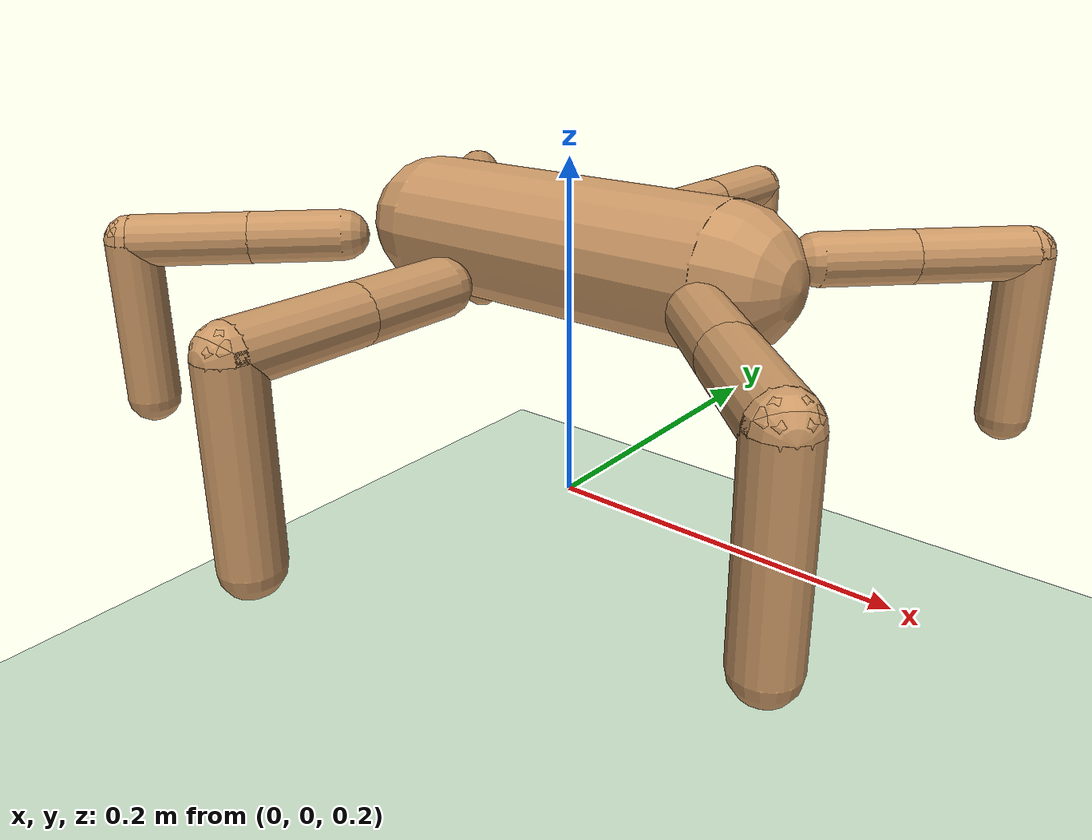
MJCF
<mujoco model="ant">
  <compiler angle="degree" coordinate="local" inertiafromgeom="true"/>
  <option integrator="RK4" timestep="0.002"/>
  <custom>
    <numeric data="0.0 0.0 0.55 1.0 0.0 0.0 0.0 0.0 1.0 0.0 -1.0 0.0 -1.0 0.0 1.0" name="init_qpos"/>
  </custom>
  <default>
    <joint armature="1" damping="1" limited="true"/>
    <geom conaffinity="0" condim="3" density="5.0" friction="1 0.5 0.5" margin="0.01" rgba="0.8 0.6 0.4 1"/>
  </default>
  <asset>
    <texture builtin="gradient" height="100" rgb1="1 1 1" rgb2="0 0 0" type="skybox" width="100"/>
    <texture builtin="flat" height="1278" mark="cross" markrgb="1 1 1" name="texgeom" random="0.01" rgb1="0.8 0.6 0.4" rgb2="0.8 0.6 0.4" type="cube" width="127"/>
    <texture builtin="checker" height="100" name="texplane" rgb1="0 0 0" rgb2="0.8 0.8 0.8" type="2d" width="100"/>
    <material name="MatPlane" reflectance="0.5" shininess="1" specular="1" texrepeat="60 60" texture="texplane"/>
    <material name="geom" texture="texgeom" texuniform="true"/>
  </asset>
  <worldbody>
    <light cutoff="100" diffuse="1 1 1" dir="-0 0 -1.3" directional="true" exponent="1" pos="0 0 1.3" specular=".1 .1 .1"/>
    <geom conaffinity="1" condim="6" material="MatPlane" name="floor" pos="0 0 0" rgba="0.8 0.9 0.8 1" size="40 40 40"  type="plane"/>
    <body name="torso" pos="0 0 0.35">
      <!--몸통-->
      <geom fromto="0.1 0.0 0.0 -0.1 0.0 0.0" name="torso_geom" size="0.04" type="capsule"/>
      <joint armature="0" damping="0" limited="false" margin="0.01" name="root" pos="0 0 0" type="free"/>

      <!--머리-->

      <body name="front_left_leg" pos="0.12 0.06 0">
        <joint axis="0 0 1" name="coxa_fl" pos="0.0 0.0 0.0" range="-34.37 34.37" type="hinge"/>
        <geom fromto="0.0 0.0 0.0 0.03676 0.03676 0.0" name="coxa_fl_geom" size="0.015"  type="capsule"/>
        <body pos="0.03676 0.03676 0">
          <joint axis="-1 1 0" name="femur_fl" pos="0.0 0.0 0.0" range="-57.3 17.18" type="hinge"/>
          <geom fromto="0.0 0.0 0.0 0.0466 0.0466 0.0" name="femur_fl_geom" size="0.015" type="capsule"/>
          <body pos="0.0466 0.0466 0.0">
            <joint axis="-1 1 0" name="tibia_fl" pos="0.0 0.0 0.0" range="-57.3 57.3" type="hinge"/>
            <geom fromto="0.0 0.0 0.0 0.0 0.0 -0.095" name="tibia_fl_geom" size="0.015" type="capsule"/>
          </body>
        </body>
      </body>

      <body name="mid_left_leg" pos="0.0 0.1 0">
        <joint axis="0 0 1" name="coxa_ml" pos="0.0 0.0 0.0" range="-34.37 34.37" type="hinge"/>
        <geom fromto="0.0 0.0 0.0 0.0 0.052 0.0" name="coxa_ml_geom" size="0.015" type="capsule"/>
        <body pos="0.0 0.052 0">
          <joint axis="-1 0 0" name="femur_ml" pos="0.0 0.0 0.0" range="-57.3 17.18" type="hinge"/>
          <geom fromto="0.0 0.0 0.0 0.0 0.066 0.0" name="femur_ml_geom" size="0.015" type="capsule"/>
          <body pos="0.0 0.066 0">
            <joint axis="-1 0 0" name="tibia_ml" pos="0.0 0.0 0.0" range="-57.3 57.3" type="hinge"/>
            <geom fromto="0.0 0.0 0.0 0.0 0.0 -0.095" name="tibia_ml_geom" size="0.015" type="capsule"/>
          </body>
        </body>
      </body>

      <body name="front_right_leg" pos="0.12 -0.06 0">
        <joint axis="0 0 1" name="coxa_fr" pos="0.0 0.0 0.0" range="-34.37 34.37" type="hinge"/>
        <geom fromto="0.0 0.0 0.0 0.03676 -0.03676 0.0" name="coxa_fr_geom" size="0.015" type="capsule"/>
        <body pos="0.03676 -0.03676 0">
          <joint axis="1 1 0" name="femur_fr" pos="0.0 0.0 0.0" range="-57.3 17.18" type="hinge"/>
          <geom fromto="0.0 0.0 0.0 0.0466 -0.0466 0.0" name="femur_fr_geom" size="0.015" type="capsule"/>
          <body pos="0.0466 -0.0466 0">
            <joint axis="1 1 0" name="tibia_fr" pos="0.0 0.0 0.0" range="-57.3 57.3" type="hinge"/>
            <geom fromto="0.0 0.0 0.0 0.0 0.0 -0.095" name="tibia_fr_geom" size="0.015" type="capsule"/>
          </body>
        </body>
      </body>

      <body name="mid_right_leg" pos="0.0 -0.1 0">
        <joint axis="0 0 1" name="coxa_mr" pos="0.0 0.0 0.0" range="-34.37 34.37" type="hinge"/>
        <geom fromto="0.0 0.0 0.0 0.0 -0.052 0.0" name="coxa_mr_geom" size="0.015" type="capsule"/>
        <body pos="0.0 -0.052 0">
          <joint axis="1 0 0" name="femur_mr" pos="0.0 0.0 0.0" range="-57.3 17.18" type="hinge"/>
          <geom fromto="0.0 0.0 0.0 0.0 -0.066 0.0" name="femur_mr_geom" size="0.015" type="capsule"/>
          <body pos="0.0 -0.066 0">
            <joint axis="1 0 0" name="tibia_mr" pos="0.0 0.0 0.0" range="-57.3 57.3" type="hinge"/>
            <geom fromto="0.0 0.0 0.0 0.0 0 -0.095" name="tibia_mr_geom" size="0.015" type="capsule"/>
          </body>
        </body>
      </body>

      <body name="back_right_leg" pos="-0.12 -0.06 0">
        <joint axis="0 0 1" name="coxa_rr" pos="0.0 0.0 0.0" range="-34.37 34.37" type="hinge"/>
        <geom fromto="0.0 0.0 0.0 -0.03676 -0.03676 0.0" name="coxa_rr_geom" size="0.015" type="capsule"/>
        <body pos="-0.03676 -0.03676 0">
          <joint axis="1 -1 0" name="femur_rr" pos="0.0 0.0 0.0" range="-57.3 17.18" type="hinge"/>
          <geom fromto="0.0 0.0 0.0 -0.0466 -0.0466 0.0" name="femur_rr_geom" size="0.015" type="capsule"/>
          <body pos="-0.0466 -0.0466 0">
            <joint axis="1 -1 0" name="tibia_rr" pos="0.0 0.0 0.0" range="-57.3 57.3" type="hinge"/>
            <geom fromto="0.0 0.0 0.0 0.0 0.0 -0.095" name="tibia_rr_geom" size="0.015" type="capsule"/>
          </body>
        </body>
      </body>

      <body name="back_left_leg" pos="-0.12 0.06 0">
        <joint axis="0 0 1" name="coxa_rl" pos="0.0 0.0 0.0" range="-34.37 34.37" type="hinge"/>
        <geom fromto="0.0 0.0 0.0 -0.03676 0.03676 0.0" name="coxa_rl_geom" size="0.015" type="capsule"/>
        <body pos="-0.03676 0.03676 0">
          <joint axis="-1 -1 0" name="femur_rl" pos="0.0 0.0 0.0" range="-57.3 17.18" type="hinge"/>
          <geom fromto="0.0 0.0 0.0 -0.0466 0.0466 0.0" name="femur_rl_geom" size="0.015" type="capsule"/>
          <body pos="-0.0466 0.04660 0">
            <joint axis="-1 -1 0" name="tibia_rl" pos="0.0 0.0 0.0" range="-57.3 57.3" type="hinge"/>
            <geom fromto="0.0 0.0 0.0 0.0 0.0 -0.095" name="tibia_rl_geom" size="0.015" type="capsule"/>
          </body>
        </body>
      </body>

    </body>
  </worldbody>

  <actuator>
    <motor joint="coxa_fl" ctrllimited="true" ctrlrange="-1.0 1.0" gear="150"/>
    <motor joint="femur_fl" ctrllimited="true" ctrlrange="-1.0 1.0" gear="150"/>
    <motor joint="tibia_fl" ctrllimited="true" ctrlrange="-1.0 1.0" gear="150"/>

    <motor joint="coxa_fr" ctrllimited="true" ctrlrange="-1.0 1.0" gear="150"/>
    <motor joint="femur_fr" ctrllimited="true" ctrlrange="-1.0 1.0" gear="150"/>
    <motor joint="tibia_fr" ctrllimited="true" ctrlrange="-1.0 1.0" gear="150"/>

    <motor joint="coxa_rr" ctrllimited="true" ctrlrange="-1.0 1.0" gear="150"/>
    <motor joint="femur_rr" ctrllimited="true" ctrlrange="-1.0 1.0" gear="150"/>
    <motor joint="tibia_rr" ctrllimited="true" ctrlrange="-1.0 1.0" gear="150"/>

    <motor joint="coxa_rl" ctrllimited="true" ctrlrange="-1.0 1.0" gear="150"/>
    <motor joint="femur_rl" ctrllimited="true" ctrlrange="-1.0 1.0" gear="150"/>
    <motor joint="tibia_rl" ctrllimited="true" ctrlrange="-1.0 1.0" gear="150"/>

    <motor joint="coxa_mr" ctrllimited="true" ctrlrange="-1.0 1.0" gear="150"/>
    <motor joint="femur_mr" ctrllimited="true" ctrlrange="-1.0 1.0" gear="150"/>
    <motor joint="tibia_mr" ctrllimited="true" ctrlrange="-1.0 1.0" gear="150"/>

    <motor joint="coxa_ml" ctrllimited="true" ctrlrange="-1.0 1.0" gear="150"/>
    <motor joint="femur_ml" ctrllimited="true" ctrlrange="-1.0 1.0" gear="150"/>
    <motor joint="tibia_ml" ctrllimited="true" ctrlrange="-1.0 1.0" gear="150"/>

  </actuator>

</mujoco>
